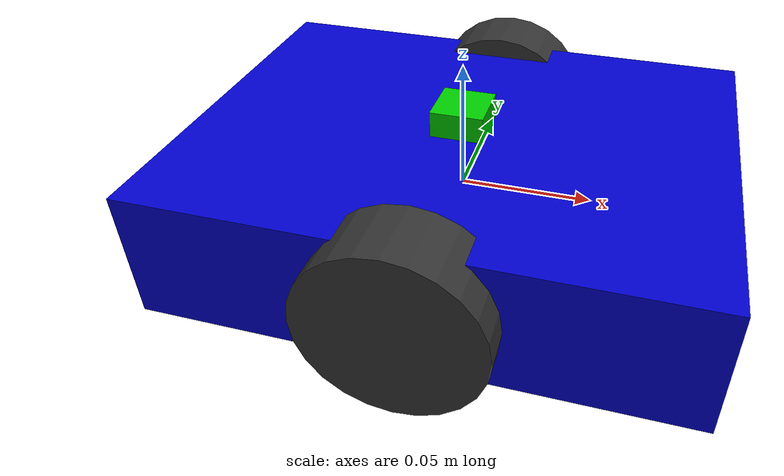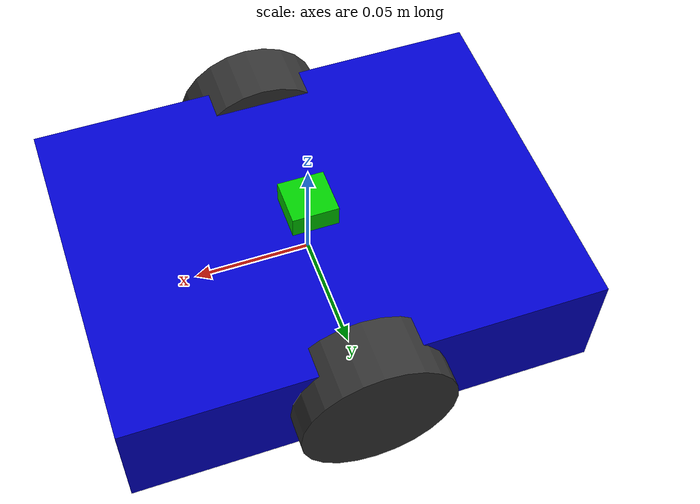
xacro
<?xml version="1.0"?>
<robot name="my_2wd_robot" xmlns:xacro="http://www.ros.org/wiki/xacro">

  <!-- Constants -->
  <xacro:property name="wheel_radius" value="0.033"/>  <!-- 33mm = 0.033m -->
  <xacro:property name="wheel_width" value="0.026"/>   <!-- 26mm -->
  <xacro:property name="wheel_base" value="0.15"/>     <!-- 150mm between wheels -->
  <xacro:property name="chassis_length" value="0.20"/>
  <xacro:property name="chassis_width" value="0.15"/>
  <xacro:property name="chassis_height" value="0.05"/>

  <!-- Base Link (Chassis) -->
  <link name="base_link">
    <visual>
      <geometry>
        <box size="${chassis_length} ${chassis_width} ${chassis_height}"/>
      </geometry>
      <material name="blue">
        <color rgba="0 0 0.8 1"/>
      </material>
    </visual>
    <collision>
      <geometry>
        <box size="${chassis_length} ${chassis_width} ${chassis_height}"/>
      </geometry>
    </collision>
    <inertial>
      <mass value="1.0"/>
      <inertia ixx="0.01" ixy="0.0" ixz="0.0"
               iyy="0.01" iyz="0.0" izz="0.01"/>
    </inertial>
  </link>

  <!-- Left Wheel -->
  <link name="left_wheel">
    <visual>
      <geometry>
        <cylinder radius="${wheel_radius}" length="${wheel_width}"/>
      </geometry>
      <material name="black">
        <color rgba="0.2 0.2 0.2 1"/>
      </material>
    </visual>
    <collision>
      <geometry>
        <cylinder radius="${wheel_radius}" length="${wheel_width}"/>
      </geometry>
    </collision>
    <inertial>
      <mass value="0.1"/>
      <inertia ixx="0.0001" ixy="0.0" ixz="0.0"
               iyy="0.0001" iyz="0.0" izz="0.0001"/>
    </inertial>
  </link>

  <!-- Left Wheel Joint -->
  <joint name="left_wheel_joint" type="continuous">
    <parent link="base_link"/>
    <child link="left_wheel"/>
    <origin xyz="0 ${wheel_base/2} 0" rpy="-1.5707 0 0"/>
    <axis xyz="0 0 1"/>
  </joint>

  <!-- Right Wheel -->
  <link name="right_wheel">
    <visual>
      <geometry>
        <cylinder radius="${wheel_radius}" length="${wheel_width}"/>
      </geometry>
      <material name="black">
        <color rgba="0.2 0.2 0.2 1"/>
      </material>
    </visual>
    <collision>
      <geometry>
        <cylinder radius="${wheel_radius}" length="${wheel_width}"/>
      </geometry>
    </collision>
    <inertial>
      <mass value="0.1"/>
      <inertia ixx="0.0001" ixy="0.0" ixz="0.0"
               iyy="0.0001" iyz="0.0" izz="0.0001"/>
    </inertial>
  </link>

  <!-- Right Wheel Joint -->
  <joint name="right_wheel_joint" type="continuous">
    <parent link="base_link"/>
    <child link="right_wheel"/>
    <origin xyz="0 ${-wheel_base/2} 0" rpy="-1.5707 0 0"/>
    <axis xyz="0 0 1"/>
  </joint>

  <!-- Ball Caster (simplified as sphere) -->
  <link name="caster">
    <visual>
      <geometry>
        <sphere radius="0.015"/>  <!-- 15mm ball -->
      </geometry>
      <material name="white">
        <color rgba="1 1 1 1"/>
      </material>
    </visual>
    <collision>
      <geometry>
        <sphere radius="0.015"/>
      </geometry>
    </collision>
    <inertial>
      <mass value="0.01"/>
      <inertia ixx="0.00001" ixy="0.0" ixz="0.0"
               iyy="0.00001" iyz="0.0" izz="0.00001"/>
    </inertial>
  </link>

  <!-- Caster Joint -->
  <joint name="caster_joint" type="fixed">
    <parent link="base_link"/>
    <child link="caster"/>
    <origin xyz="-0.08 0 -0.02" rpy="0 0 0"/>
  </joint>

  <!-- IMU Link -->
  <link name="imu_link">
    <visual>
      <geometry>
        <box size="0.02 0.02 0.01"/>
      </geometry>
      <material name="green">
        <color rgba="0 0.8 0 1"/>
      </material>
    </visual>
  </link>

  <!-- IMU Joint -->
  <joint name="imu_joint" type="fixed">
    <parent link="base_link"/>
    <child link="imu_link"/>
    <origin xyz="0 0 0.03" rpy="0 0 0"/>
  </joint>

  <!-- GAZEBO PLUGINS (This is where magic happens!) -->

  <!-- Differential Drive Plugin (Controls wheels like real motors) -->
  <gazebo>
    <plugin filename="libgz-sim-diff-drive-system.so" name="gz::sim::systems::DiffDrive">

      <!-- Wheel joints -->
      <left_joint>left_wheel_joint</left_joint>
      <right_joint>right_wheel_joint</right_joint>

      <!-- Kinematics -->
      <wheel_separation>${wheel_base}</wheel_separation>
      <wheel_radius>${wheel_radius}</wheel_radius>

      <!-- Topic (robot will subscribe to /model/my_robot/cmd_vel) -->
      <topic>/model/my_robot/cmd_vel</topic>

      <!-- Odometry -->
      <odom_topic>/model/my_robot/odometry</odom_topic>
      <odom_publish_frequency>50</odom_publish_frequency>

      <!-- TF frames -->
      <frame_id>odom</frame_id>
      <child_frame_id>base_link</child_frame_id>

    </plugin>
  </gazebo>

  <!-- IMU Sensor Plugin (Simulates MPU6050) -->
  <gazebo reference="imu_link">
    <sensor name="imu_sensor" type="imu">
      <always_on>1</always_on>
      <update_rate>100</update_rate>
      <visualize>true</visualize>
      <topic>imu</topic>
      <enable_metrics>false</enable_metrics>
    </sensor>
  </gazebo>

  <!-- Joint State Publisher (Publishes wheel positions = encoders!) -->
  <gazebo>
    <plugin filename="gz-sim-joint-state-publisher-system"
            name="gz::sim::systems::JointStatePublisher">
      <joint_name>left_wheel_joint</joint_name>
      <joint_name>right_wheel_joint</joint_name>
      <update_rate>50</update_rate>
    </plugin>
  </gazebo>

  <!-- Material colors for Gazebo -->
  <gazebo reference="base_link">
    <material>
      <ambient>0 0 0.8 1</ambient>
      <diffuse>0 0 0.8 1</diffuse>
    </material>
  </gazebo>

  <gazebo reference="left_wheel">
    <material>
      <ambient>0.2 0.2 0.2 1</ambient>
      <diffuse>0.2 0.2 0.2 1</diffuse>
    </material>
  </gazebo>

  <gazebo reference="right_wheel">
    <material>
      <ambient>0.2 0.2 0.2 1</ambient>
      <diffuse>0.2 0.2 0.2 1</diffuse>
    </material>
  </gazebo>

  <gazebo reference="caster">
    <material>
      <ambient>1 1 1 1</ambient>
      <diffuse>1 1 1 1</diffuse>
    </material>
  </gazebo>

</robot>
